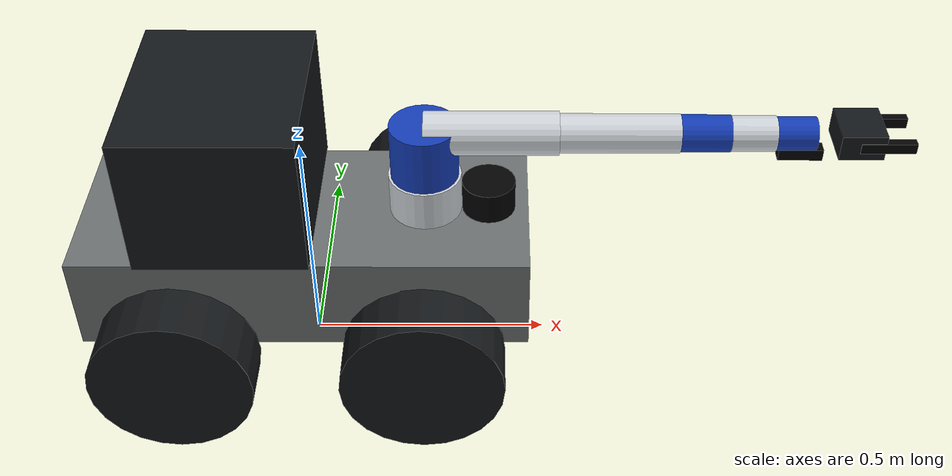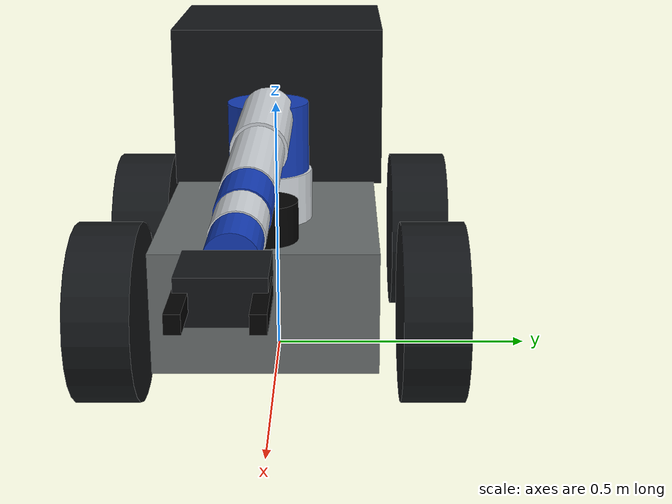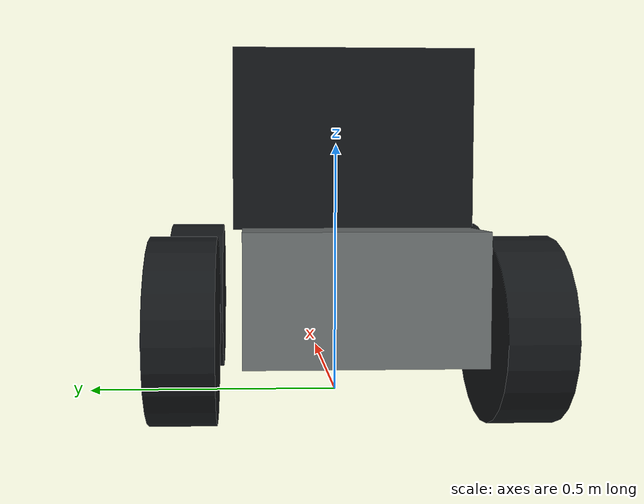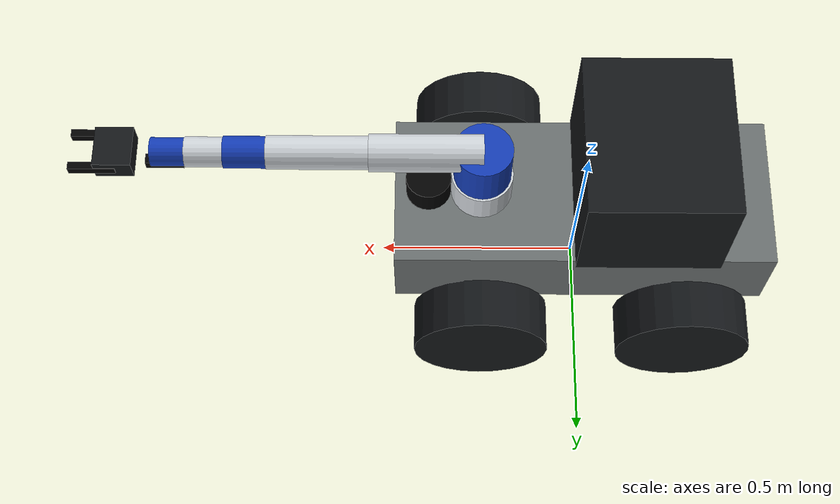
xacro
<?xml version="1.0"?>
<robot name="scout_ur3e_6dof_slam_lite" xmlns:xacro="http://www.ros.org/wiki/xacro">

  <xacro:property name="base_x_size" value="0.925"/>
  <xacro:property name="base_y_size" value="0.380"/>
  <xacro:property name="base_z_size" value="0.210"/>
  <xacro:property name="wheel_radius" value="0.16459"/>
  <xacro:property name="wheel_length" value="0.11653"/>
  <xacro:property name="wheel_separation" value="0.58306"/>
  <xacro:property name="wheelbase" value="0.498"/>
  <xacro:property name="wheel_vertical_offset" value="-0.0702"/>

  <material name="lite_gray">
    <color rgba="0.42 0.44 0.44 1.0"/>
  </material>
  <material name="lite_dark">
    <color rgba="0.08 0.09 0.10 1.0"/>
  </material>
  <material name="ur_blue">
    <color rgba="0.08 0.24 0.72 1.0"/>
  </material>
  <material name="ur_light">
    <color rgba="0.82 0.84 0.86 1.0"/>
  </material>
  <material name="sensor_black">
    <color rgba="0.01 0.01 0.01 1.0"/>
  </material>

  <xacro:macro name="box_inertial" params="mass x y z">
    <inertial>
      <mass value="${mass}"/>
      <inertia
        ixx="${mass * (y*y + z*z) / 12.0}" ixy="0" ixz="0"
        iyy="${mass * (x*x + z*z) / 12.0}" iyz="0"
        izz="${mass * (x*x + y*y) / 12.0}"/>
    </inertial>
  </xacro:macro>

  <xacro:macro name="simple_cylinder_link" params="name radius length mass material *origin">
    <link name="${name}">
      <xacro:box_inertial mass="${mass}" x="${radius * 2.0}" y="${radius * 2.0}" z="${length}"/>
      <visual>
        <xacro:insert_block name="origin"/>
        <geometry>
          <cylinder radius="${radius}" length="${length}"/>
        </geometry>
        <material name="${material}"/>
      </visual>
      <collision>
        <xacro:insert_block name="origin"/>
        <geometry>
          <cylinder radius="${radius}" length="${length}"/>
        </geometry>
      </collision>
    </link>
  </xacro:macro>

  <xacro:macro name="drive_wheel" params="name x y">
    <link name="${name}_link">
      <inertial>
        <mass value="1.2"/>
        <inertia ixx="0.012" ixy="0" ixz="0" iyy="0.012" iyz="0" izz="0.012"/>
      </inertial>
      <visual>
        <origin xyz="0 0 0" rpy="${pi / 2.0} 0 0"/>
        <geometry>
          <cylinder radius="${wheel_radius}" length="${wheel_length}"/>
        </geometry>
        <material name="lite_dark"/>
      </visual>
      <collision>
        <origin xyz="0 0 0" rpy="${pi / 2.0} 0 0"/>
        <geometry>
          <cylinder radius="${wheel_radius}" length="${wheel_length}"/>
        </geometry>
      </collision>
    </link>
    <joint name="${name}_joint" type="continuous">
      <parent link="base_link"/>
      <child link="${name}_link"/>
      <origin xyz="${x} ${y} ${wheel_vertical_offset}" rpy="0 0 0"/>
      <axis xyz="0 1 0"/>
      <dynamics damping="0.2" friction="0.1"/>
    </joint>
  </xacro:macro>

  <link name="base_footprint"/>

  <!-- Scout body: primitive-only approximation to keep Gazebo light. -->
  <link name="base_link">
    <xacro:box_inertial mass="45.0" x="${base_x_size}" y="${base_y_size}" z="${base_z_size}"/>
    <visual>
      <origin xyz="0 0 0.008" rpy="0 0 0"/>
      <geometry>
        <box size="${base_x_size} ${base_y_size} ${base_z_size}"/>
      </geometry>
      <material name="lite_gray"/>
    </visual>
    <collision>
      <origin xyz="0 0 0.008" rpy="0 0 0"/>
      <geometry>
        <box size="${base_x_size} ${base_y_size} ${base_z_size}"/>
      </geometry>
    </collision>
  </link>

  <joint name="base_footprint_joint" type="fixed">
    <parent link="base_footprint"/>
    <child link="base_link"/>
    <origin xyz="0 0 ${-(wheel_vertical_offset - wheel_radius)}" rpy="0 0 0"/>
  </joint>

  <xacro:drive_wheel name="front_left_wheel" x="${wheelbase / 2.0}" y="${wheel_separation / 2.0}"/>
  <xacro:drive_wheel name="front_right_wheel" x="${wheelbase / 2.0}" y="${-wheel_separation / 2.0}"/>
  <xacro:drive_wheel name="rear_left_wheel" x="${-wheelbase / 2.0}" y="${wheel_separation / 2.0}"/>
  <xacro:drive_wheel name="rear_right_wheel" x="${-wheelbase / 2.0}" y="${-wheel_separation / 2.0}"/>

  <link name="ur_control_box_link">
    <xacro:box_inertial mass="3.0" x="0.35" y="0.40" z="0.30"/>
    <visual>
      <origin xyz="0 0 0" rpy="0 0 0"/>
      <geometry>
        <box size="0.35 0.40 0.30"/>
      </geometry>
      <material name="lite_dark"/>
    </visual>
    <collision>
      <origin xyz="0 0 0" rpy="0 0 0"/>
      <geometry>
        <box size="0.35 0.40 0.30"/>
      </geometry>
    </collision>
  </link>
  <joint name="ur_control_box_joint" type="fixed">
    <parent link="base_link"/>
    <child link="ur_control_box_link"/>
    <origin xyz="-0.15 0.005 0.26" rpy="0 0 0"/>
  </joint>

  <!-- Six-axis UR3e-style kinematic chain with lightweight visuals. -->
  <xacro:simple_cylinder_link name="ur3e_base_link" radius="0.075" length="0.10" mass="2.0" material="ur_light">
    <origin xyz="0 0 0.05" rpy="0 0 0"/>
  </xacro:simple_cylinder_link>
  <joint name="ur3e_base_joint" type="fixed">
    <parent link="base_link"/>
    <child link="ur3e_base_link"/>
    <origin xyz="0.25 0 0.10" rpy="0 0 0"/>
  </joint>

  <xacro:simple_cylinder_link name="ur3e_shoulder_link" radius="0.070" length="0.12" mass="1.8" material="ur_blue">
    <origin xyz="0 0 0.06" rpy="0 0 0"/>
  </xacro:simple_cylinder_link>
  <joint name="shoulder_pan_joint" type="revolute">
    <parent link="ur3e_base_link"/>
    <child link="ur3e_shoulder_link"/>
    <origin xyz="0 0 0.10" rpy="0 0 0"/>
    <axis xyz="0 0 1"/>
    <limit lower="${-2.0 * pi}" upper="${2.0 * pi}" effort="150" velocity="3.14"/>
    <dynamics damping="0.4" friction="0.1"/>
  </joint>

  <link name="ur3e_upper_arm_link">
    <xacro:box_inertial mass="2.0" x="0.27" y="0.08" z="0.08"/>
    <visual>
      <origin xyz="0.135 0 0" rpy="0 ${pi / 2.0} 0"/>
      <geometry>
        <cylinder radius="0.045" length="0.27"/>
      </geometry>
      <material name="ur_light"/>
    </visual>
    <collision>
      <origin xyz="0.135 0 0" rpy="0 ${pi / 2.0} 0"/>
      <geometry>
        <cylinder radius="0.045" length="0.27"/>
      </geometry>
    </collision>
  </link>
  <joint name="shoulder_lift_joint" type="revolute">
    <parent link="ur3e_shoulder_link"/>
    <child link="ur3e_upper_arm_link"/>
    <origin xyz="0 0 0.10" rpy="0 0 0"/>
    <axis xyz="0 1 0"/>
    <limit lower="-3.1416" upper="0.7854" effort="150" velocity="3.14"/>
    <dynamics damping="0.4" friction="0.1"/>
  </joint>

  <link name="ur3e_forearm_link">
    <xacro:box_inertial mass="1.6" x="0.24" y="0.07" z="0.07"/>
    <visual>
      <origin xyz="0.12 0 0" rpy="0 ${pi / 2.0} 0"/>
      <geometry>
        <cylinder radius="0.040" length="0.24"/>
      </geometry>
      <material name="ur_light"/>
    </visual>
    <collision>
      <origin xyz="0.12 0 0" rpy="0 ${pi / 2.0} 0"/>
      <geometry>
        <cylinder radius="0.040" length="0.24"/>
      </geometry>
    </collision>
  </link>
  <joint name="elbow_joint" type="revolute">
    <parent link="ur3e_upper_arm_link"/>
    <child link="ur3e_forearm_link"/>
    <origin xyz="0.27 0 0" rpy="0 0 0"/>
    <axis xyz="0 1 0"/>
    <limit lower="-2.80" upper="2.80" effort="100" velocity="3.14"/>
    <dynamics damping="0.35" friction="0.1"/>
  </joint>

  <xacro:simple_cylinder_link name="ur3e_wrist_1_link" radius="0.038" length="0.10" mass="0.7" material="ur_blue">
    <origin xyz="0.05 0 0" rpy="0 ${pi / 2.0} 0"/>
  </xacro:simple_cylinder_link>
  <joint name="wrist_1_joint" type="revolute">
    <parent link="ur3e_forearm_link"/>
    <child link="ur3e_wrist_1_link"/>
    <origin xyz="0.24 0 0" rpy="0 0 0"/>
    <axis xyz="0 1 0"/>
    <limit lower="${-2.0 * pi}" upper="${2.0 * pi}" effort="54" velocity="6.28"/>
    <dynamics damping="0.2" friction="0.05"/>
  </joint>

  <xacro:simple_cylinder_link name="ur3e_wrist_2_link" radius="0.036" length="0.09" mass="0.6" material="ur_light">
    <origin xyz="0.045 0 0" rpy="0 ${pi / 2.0} 0"/>
  </xacro:simple_cylinder_link>
  <joint name="wrist_2_joint" type="revolute">
    <parent link="ur3e_wrist_1_link"/>
    <child link="ur3e_wrist_2_link"/>
    <origin xyz="0.10 0 0" rpy="0 0 0"/>
    <axis xyz="0 0 1"/>
    <limit lower="${-2.0 * pi}" upper="${2.0 * pi}" effort="54" velocity="6.28"/>
    <dynamics damping="0.2" friction="0.05"/>
  </joint>

  <xacro:simple_cylinder_link name="ur3e_wrist_3_link" radius="0.034" length="0.08" mass="0.5" material="ur_blue">
    <origin xyz="0.04 0 0" rpy="0 ${pi / 2.0} 0"/>
  </xacro:simple_cylinder_link>
  <joint name="wrist_3_joint" type="revolute">
    <parent link="ur3e_wrist_2_link"/>
    <child link="ur3e_wrist_3_link"/>
    <origin xyz="0.09 0 0" rpy="0 0 0"/>
    <axis xyz="0 1 0"/>
    <limit lower="${-2.0 * pi}" upper="${2.0 * pi}" effort="54" velocity="6.28"/>
    <dynamics damping="0.2" friction="0.05"/>
  </joint>

  <link name="ur3e_flange"/>
  <joint name="ur3e_flange_joint" type="fixed">
    <parent link="ur3e_wrist_3_link"/>
    <child link="ur3e_flange"/>
    <origin xyz="0.08 0 0" rpy="0 0 0"/>
  </joint>

  <link name="ur3e_tool0"/>
  <joint name="ur3e_tool0_joint" type="fixed">
    <parent link="ur3e_flange"/>
    <child link="ur3e_tool0"/>
    <origin xyz="0.02 0 0" rpy="0 0 0"/>
  </joint>

  <link name="robotiq_85_base_link">
    <xacro:box_inertial mass="0.6" x="0.09" y="0.10" z="0.055"/>
    <visual>
      <origin xyz="0.045 0 0" rpy="0 0 0"/>
      <geometry>
        <box size="0.09 0.10 0.055"/>
      </geometry>
      <material name="lite_dark"/>
    </visual>
    <collision>
      <origin xyz="0.045 0 0" rpy="0 0 0"/>
      <geometry>
        <box size="0.09 0.10 0.055"/>
      </geometry>
    </collision>
  </link>
  <joint name="robotiq_85_base_joint" type="fixed">
    <parent link="ur3e_tool0"/>
    <child link="robotiq_85_base_link"/>
    <origin xyz="0.02 0 0" rpy="0 0 0"/>
  </joint>

  <xacro:macro name="finger" params="side y">
    <link name="robotiq_85_${side}_finger_link">
      <xacro:box_inertial mass="0.08" x="0.11" y="0.018" z="0.022"/>
      <visual>
        <origin xyz="0.095 ${y} 0" rpy="0 0 0"/>
        <geometry>
          <box size="0.11 0.018 0.022"/>
        </geometry>
        <material name="sensor_black"/>
      </visual>
      <collision>
        <origin xyz="0.095 ${y} 0" rpy="0 0 0"/>
        <geometry>
          <box size="0.11 0.018 0.022"/>
        </geometry>
      </collision>
    </link>
    <joint name="robotiq_85_${side}_finger_joint" type="fixed">
      <parent link="robotiq_85_base_link"/>
      <child link="robotiq_85_${side}_finger_link"/>
      <origin xyz="0 0 0" rpy="0 0 0"/>
    </joint>
  </xacro:macro>
  <xacro:finger side="left" y="0.043"/>
  <xacro:finger side="right" y="-0.043"/>

  <link name="button_press_tip"/>
  <joint name="button_press_tip_joint" type="fixed">
    <parent link="robotiq_85_base_link"/>
    <child link="button_press_tip"/>
    <origin xyz="0.16 0 0" rpy="0 0 0"/>
  </joint>

  <link name="velodyne_link">
    <xacro:box_inertial mass="0.5" x="0.11" y="0.11" z="0.08"/>
    <visual>
      <origin xyz="0 0 0.04" rpy="0 0 0"/>
      <geometry>
        <cylinder radius="0.055" length="0.08"/>
      </geometry>
      <material name="sensor_black"/>
    </visual>
    <collision>
      <origin xyz="0 0 0.04" rpy="0 0 0"/>
      <geometry>
        <cylinder radius="0.055" length="0.08"/>
      </geometry>
    </collision>
  </link>
  <joint name="velodyne_joint" type="fixed">
    <parent link="base_link"/>
    <child link="velodyne_link"/>
    <origin xyz="0.38 0.0 0.10" rpy="0 0 0"/>
  </joint>

  <link name="realsense_d435i_link">
    <xacro:box_inertial mass="0.09" x="0.09" y="0.025" z="0.025"/>
    <visual>
      <origin xyz="0 0 0" rpy="0 0 0"/>
      <geometry>
        <box size="0.09 0.025 0.025"/>
      </geometry>
      <material name="sensor_black"/>
    </visual>
    <collision>
      <origin xyz="0 0 0" rpy="0 0 0"/>
      <geometry>
        <box size="0.09 0.025 0.025"/>
      </geometry>
    </collision>
  </link>
  <joint name="realsense_d435i_joint" type="fixed">
    <parent link="ur3e_flange"/>
    <child link="realsense_d435i_link"/>
    <origin xyz="-0.025 0 -0.045" rpy="0 ${pi} ${pi}"/>
  </joint>

  <link name="realsense_d435i_color_optical_frame"/>
  <joint name="realsense_d435i_color_optical_joint" type="fixed">
    <parent link="realsense_d435i_link"/>
    <child link="realsense_d435i_color_optical_frame"/>
    <origin xyz="0 0 0" rpy="${-pi / 2.0} 0 ${-pi / 2.0}"/>
  </joint>

  <link name="realsense_d435i_depth_optical_frame"/>
  <joint name="realsense_d435i_depth_optical_joint" type="fixed">
    <parent link="realsense_d435i_link"/>
    <child link="realsense_d435i_depth_optical_frame"/>
    <origin xyz="0 0 0" rpy="${-pi / 2.0} 0 ${-pi / 2.0}"/>
  </joint>

  <gazebo reference="ur_control_box_link"><gravity>false</gravity></gazebo>
  <gazebo reference="ur3e_base_link"><gravity>false</gravity></gazebo>
  <gazebo reference="ur3e_shoulder_link"><gravity>false</gravity></gazebo>
  <gazebo reference="ur3e_upper_arm_link"><gravity>false</gravity></gazebo>
  <gazebo reference="ur3e_forearm_link"><gravity>false</gravity></gazebo>
  <gazebo reference="ur3e_wrist_1_link"><gravity>false</gravity></gazebo>
  <gazebo reference="ur3e_wrist_2_link"><gravity>false</gravity></gazebo>
  <gazebo reference="ur3e_wrist_3_link"><gravity>false</gravity></gazebo>
  <gazebo reference="robotiq_85_base_link"><gravity>false</gravity></gazebo>
  <gazebo reference="robotiq_85_left_finger_link"><gravity>false</gravity></gazebo>
  <gazebo reference="robotiq_85_right_finger_link"><gravity>false</gravity></gazebo>
  <gazebo reference="realsense_d435i_link"><gravity>false</gravity></gazebo>

  <gazebo>
    <plugin name="arm_joint_pose_trajectory" filename="libgazebo_ros_joint_pose_trajectory.so">
      <ros>
        <namespace>/</namespace>
        <remapping>set_joint_trajectory:=arm_joint_trajectory</remapping>
      </ros>
      <update_rate>50</update_rate>
    </plugin>

    <plugin name="scout_diff_drive" filename="libgazebo_ros_diff_drive.so">
      <ros>
        <namespace>/</namespace>
        <remapping>cmd_vel:=cmd_vel</remapping>
        <remapping>odom:=odom</remapping>
      </ros>
      <left_joint>rear_left_wheel_joint</left_joint>
      <right_joint>rear_right_wheel_joint</right_joint>
      <wheel_separation>${wheel_separation}</wheel_separation>
      <wheel_diameter>${2.0 * wheel_radius}</wheel_diameter>
      <max_wheel_torque>30.0</max_wheel_torque>
      <max_wheel_acceleration>2.5</max_wheel_acceleration>
      <publish_odom>true</publish_odom>
      <publish_odom_tf>true</publish_odom_tf>
      <publish_wheel_tf>false</publish_wheel_tf>
      <odometry_frame>odom</odometry_frame>
      <robot_base_frame>base_link</robot_base_frame>
    </plugin>
  </gazebo>

  <gazebo reference="velodyne_link">
    <sensor name="velodyne_laser" type="ray">
      <always_on>true</always_on>
      <visualize>false</visualize>
      <update_rate>8</update_rate>
      <ray>
        <scan>
          <horizontal>
            <samples>360</samples>
            <resolution>1</resolution>
            <min_angle>${-pi}</min_angle>
            <max_angle>${pi}</max_angle>
          </horizontal>
        </scan>
        <range>
          <min>0.12</min>
          <max>12.0</max>
          <resolution>0.02</resolution>
        </range>
        <noise>
          <type>gaussian</type>
          <mean>0.0</mean>
          <stddev>0.01</stddev>
        </noise>
      </ray>
      <plugin name="velodyne_laser_controller" filename="libgazebo_ros_ray_sensor.so">
        <ros>
          <namespace>/</namespace>
          <remapping>~/out:=scan</remapping>
        </ros>
        <output_type>sensor_msgs/LaserScan</output_type>
        <frame_name>velodyne_link</frame_name>
      </plugin>
    </sensor>
  </gazebo>

  <gazebo reference="realsense_d435i_link">
    <sensor name="realsense_color" type="camera">
      <always_on>true</always_on>
      <visualize>false</visualize>
      <update_rate>10</update_rate>
      <camera>
        <horizontal_fov>1.047</horizontal_fov>
        <image>
          <width>320</width>
          <height>240</height>
          <format>R8G8B8</format>
        </image>
        <clip>
          <near>0.05</near>
          <far>8.0</far>
        </clip>
      </camera>
      <plugin name="realsense_color_controller" filename="libgazebo_ros_camera.so">
        <ros>
          <namespace>/camera</namespace>
          <remapping>image_raw:=color/image_raw</remapping>
          <remapping>camera_info:=color/camera_info</remapping>
        </ros>
        <camera_name>realsense_d435i</camera_name>
        <frame_name>realsense_d435i_color_optical_frame</frame_name>
      </plugin>
    </sensor>

  </gazebo>

</robot>
